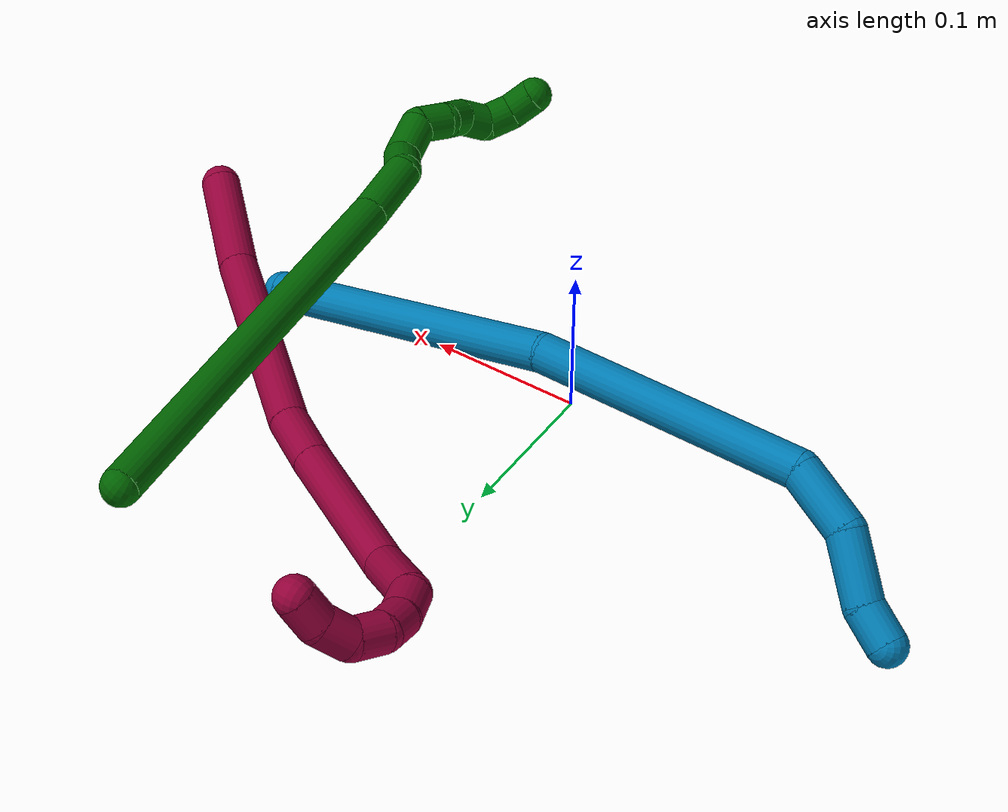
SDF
<sdf version="1.7">
 <world name="default">
  <model name="6">
   <static>0</static>
   <link name="6">
    <collision name="collision-cylinder-e_1_1_4">
     <pose>0.13188 0.01441 -0.062253 -2.91412 1.1196 -2.78099</pose>
     <geometry><cylinder><radius>0.0125</radius><length>0.29309</length></cylinder></geometry>
     <surface>
      <friction><ode><mu>1.16</mu><mu2>1.16</mu2><slip1>0</slip1><slip2>0</slip2></ode></friction>
      <contact><ode><kp>1e+06</kp><kd>1</kd><max_vel>0</max_vel><min_depth>0.001</min_depth></ode></contact>
     </surface>
    </collision>
    <visual name="visual-cylinder-e_1_1_4">
     <pose>0.13188 0.01441 -0.062253 -2.91412 1.1196 -2.78099</pose>
     <geometry><cylinder><radius>0.0125</radius><length>0.29309</length></cylinder></geometry>
     <material><ambient>0 0.392157 0.003922 1</ambient></material>
    </visual>
    <collision name="collision-cylinder-e_2_4_5">
     <pose>0.284378 0.029997 -0.135809 -3.03788 1.06712 -2.96632</pose>
     <geometry><cylinder><radius>0.0125</radius><length>0.047085</length></cylinder></geometry>
     <surface>
      <friction><ode><mu>1.16</mu><mu2>1.16</mu2><slip1>0</slip1><slip2>0</slip2></ode></friction>
      <contact><ode><kp>1e+06</kp><kd>1</kd><max_vel>0</max_vel><min_depth>0.001</min_depth></ode></contact>
     </surface>
    </collision>
    <visual name="visual-cylinder-e_2_4_5">
     <pose>0.284378 0.029997 -0.135809 -3.03788 1.06712 -2.96632</pose>
     <geometry><cylinder><radius>0.0125</radius><length>0.047085</length></cylinder></geometry>
     <material><ambient>0 0.392157 0.003922 1</ambient></material>
    </visual>
    <collision name="collision-cylinder-e_3_5_6">
     <pose>0.31848 0.028283 -0.146319 1.30352 1.35207 1.09841</pose>
     <geometry><cylinder><radius>0.0125</radius><length>0.027624</length></cylinder></geometry>
     <surface>
      <friction><ode><mu>1.16</mu><mu2>1.16</mu2><slip1>0</slip1><slip2>0</slip2></ode></friction>
      <contact><ode><kp>1e+06</kp><kd>1</kd><max_vel>0</max_vel><min_depth>0.001</min_depth></ode></contact>
     </surface>
    </collision>
    <visual name="visual-cylinder-e_3_5_6">
     <pose>0.31848 0.028283 -0.146319 1.30352 1.35207 1.09841</pose>
     <geometry><cylinder><radius>0.0125</radius><length>0.027624</length></cylinder></geometry>
     <material><ambient>0 0.392157 0.003922 1</ambient></material>
    </visual>
    <collision name="collision-cylinder-e_4_6_7">
     <pose>0.344507 0.023759 -0.153915 2.94933 0.972777 2.78083</pose>
     <geometry><cylinder><radius>0.0125</radius><length>0.030356</length></cylinder></geometry>
     <surface>
      <friction><ode><mu>1.16</mu><mu2>1.16</mu2><slip1>0</slip1><slip2>0</slip2></ode></friction>
      <contact><ode><kp>1e+06</kp><kd>1</kd><max_vel>0</max_vel><min_depth>0.001</min_depth></ode></contact>
     </surface>
    </collision>
    <visual name="visual-cylinder-e_4_6_7">
     <pose>0.344507 0.023759 -0.153915 2.94933 0.972777 2.78083</pose>
     <geometry><cylinder><radius>0.0125</radius><length>0.030356</length></cylinder></geometry>
     <material><ambient>0 0.392157 0.003922 1</ambient></material>
    </visual>
    <collision name="collision-cylinder-e_5_7_8">
     <pose>0.364013 0.028847 -0.167062 -2.18696 0.701866 -1.2319</pose>
     <geometry><cylinder><radius>0.0125</radius><length>0.021569</length></cylinder></geometry>
     <surface>
      <friction><ode><mu>1.16</mu><mu2>1.16</mu2><slip1>0</slip1><slip2>0</slip2></ode></friction>
      <contact><ode><kp>1e+06</kp><kd>1</kd><max_vel>0</max_vel><min_depth>0.001</min_depth></ode></contact>
     </surface>
    </collision>
    <visual name="visual-cylinder-e_5_7_8">
     <pose>0.364013 0.028847 -0.167062 -2.18696 0.701866 -1.2319</pose>
     <geometry><cylinder><radius>0.0125</radius><length>0.021569</length></cylinder></geometry>
     <material><ambient>0 0.392157 0.003922 1</ambient></material>
    </visual>
    <collision name="collision-cylinder-e_6_8_9">
     <pose>0.380159 0.039426 -0.17314 -1.90021 1.15296 -1.47592</pose>
     <geometry><cylinder><radius>0.0125</radius><length>0.020094</length></cylinder></geometry>
     <surface>
      <friction><ode><mu>1.16</mu><mu2>1.16</mu2><slip1>0</slip1><slip2>0</slip2></ode></friction>
      <contact><ode><kp>1e+06</kp><kd>1</kd><max_vel>0</max_vel><min_depth>0.001</min_depth></ode></contact>
     </surface>
    </collision>
    <visual name="visual-cylinder-e_6_8_9">
     <pose>0.380159 0.039426 -0.17314 -1.90021 1.15296 -1.47592</pose>
     <geometry><cylinder><radius>0.0125</radius><length>0.020094</length></cylinder></geometry>
     <material><ambient>0 0.392157 0.003922 1</ambient></material>
    </visual>
    <collision name="collision-cylinder-e_7_9_10">
     <pose>0.394541 0.0516 -0.176428 -1.80326 0.546615 -0.681241</pose>
     <geometry><cylinder><radius>0.0125</radius><length>0.020008</length></cylinder></geometry>
     <surface>
      <friction><ode><mu>1.16</mu><mu2>1.16</mu2><slip1>0</slip1><slip2>0</slip2></ode></friction>
      <contact><ode><kp>1e+06</kp><kd>1</kd><max_vel>0</max_vel><min_depth>0.001</min_depth></ode></contact>
     </surface>
    </collision>
    <visual name="visual-cylinder-e_7_9_10">
     <pose>0.394541 0.0516 -0.176428 -1.80326 0.546615 -0.681241</pose>
     <geometry><cylinder><radius>0.0125</radius><length>0.020008</length></cylinder></geometry>
     <material><ambient>0 0.392157 0.003922 1</ambient></material>
    </visual>
    <collision name="collision-cylinder-e_8_10_11">
     <pose>0.404233 0.064908 -0.185917 -2.55566 0.461748 -1.32396</pose>
     <geometry><cylinder><radius>0.0125</radius><length>0.020163</length></cylinder></geometry>
     <surface>
      <friction><ode><mu>1.16</mu><mu2>1.16</mu2><slip1>0</slip1><slip2>0</slip2></ode></friction>
      <contact><ode><kp>1e+06</kp><kd>1</kd><max_vel>0</max_vel><min_depth>0.001</min_depth></ode></contact>
     </surface>
    </collision>
    <visual name="visual-cylinder-e_8_10_11">
     <pose>0.404233 0.064908 -0.185917 -2.55566 0.461748 -1.32396</pose>
     <geometry><cylinder><radius>0.0125</radius><length>0.020163</length></cylinder></geometry>
     <material><ambient>0 0.392157 0.003922 1</ambient></material>
    </visual>
    <collision name="collision-cylinder-e_9_11_2">
     <pose>0.408864 0.072837 -0.203001 -2.84352 0.014008 -0.093224</pose>
     <geometry><cylinder><radius>0.0125</radius><length>0.020012</length></cylinder></geometry>
     <surface>
      <friction><ode><mu>1.16</mu><mu2>1.16</mu2><slip1>0</slip1><slip2>0</slip2></ode></friction>
      <contact><ode><kp>1e+06</kp><kd>1</kd><max_vel>0</max_vel><min_depth>0.001</min_depth></ode></contact>
     </surface>
    </collision>
    <visual name="visual-cylinder-e_9_11_2">
     <pose>0.408864 0.072837 -0.203001 -2.84352 0.014008 -0.093224</pose>
     <geometry><cylinder><radius>0.0125</radius><length>0.020012</length></cylinder></geometry>
     <material><ambient>0 0.392157 0.003922 1</ambient></material>
    </visual>
    <collision name="collision-sphere-2">
     <pose>0.409005 0.075775 -0.212565 0 -0 0</pose>
     <geometry><sphere><radius>0.0125</radius></sphere></geometry>
     <surface>
      <friction><ode><mu>1.16</mu><mu2>1.16</mu2><slip1>0</slip1><slip2>0</slip2></ode></friction>
      <contact><ode><kp>1e+06</kp><kd>1</kd><max_vel>0</max_vel><min_depth>0.001</min_depth></ode></contact>
     </surface>
    </collision>
    <visual name="visual-sphere-2">
     <pose>0.409005 0.075775 -0.212565 0 -0 0</pose>
     <geometry><sphere><radius>0.0125</radius></sphere></geometry>
     <material><ambient>0 0.392157 0.003922 1</ambient></material>
    </visual>
    <collision name="collision-sphere-11">
     <pose>0.408724 0.069899 -0.193437 0 -0 0</pose>
     <geometry><sphere><radius>0.0125</radius></sphere></geometry>
     <surface>
      <friction><ode><mu>1.16</mu><mu2>1.16</mu2><slip1>0</slip1><slip2>0</slip2></ode></friction>
      <contact><ode><kp>1e+06</kp><kd>1</kd><max_vel>0</max_vel><min_depth>0.001</min_depth></ode></contact>
     </surface>
    </collision>
    <visual name="visual-sphere-11">
     <pose>0.408724 0.069899 -0.193437 0 -0 0</pose>
     <geometry><sphere><radius>0.0125</radius></sphere></geometry>
     <material><ambient>0 0.392157 0.003922 1</ambient></material>
    </visual>
    <collision name="collision-sphere-10">
     <pose>0.399741 0.059917 -0.178397 0 -0 0</pose>
     <geometry><sphere><radius>0.0125</radius></sphere></geometry>
     <surface>
      <friction><ode><mu>1.16</mu><mu2>1.16</mu2><slip1>0</slip1><slip2>0</slip2></ode></friction>
      <contact><ode><kp>1e+06</kp><kd>1</kd><max_vel>0</max_vel><min_depth>0.001</min_depth></ode></contact>
     </surface>
    </collision>
    <visual name="visual-sphere-10">
     <pose>0.399741 0.059917 -0.178397 0 -0 0</pose>
     <geometry><sphere><radius>0.0125</radius></sphere></geometry>
     <material><ambient>0 0.392157 0.003922 1</ambient></material>
    </visual>
    <collision name="collision-sphere-9">
     <pose>0.389341 0.043284 -0.174459 0 -0 0</pose>
     <geometry><sphere><radius>0.0125</radius></sphere></geometry>
     <surface>
      <friction><ode><mu>1.16</mu><mu2>1.16</mu2><slip1>0</slip1><slip2>0</slip2></ode></friction>
      <contact><ode><kp>1e+06</kp><kd>1</kd><max_vel>0</max_vel><min_depth>0.001</min_depth></ode></contact>
     </surface>
    </collision>
    <visual name="visual-sphere-9">
     <pose>0.389341 0.043284 -0.174459 0 -0 0</pose>
     <geometry><sphere><radius>0.0125</radius></sphere></geometry>
     <material><ambient>0 0.392157 0.003922 1</ambient></material>
    </visual>
    <collision name="collision-sphere-4">
     <pose>0.263759 0.028821 -0.124507 0 -0 0</pose>
     <geometry><sphere><radius>0.0125</radius></sphere></geometry>
     <surface>
      <friction><ode><mu>1.16</mu><mu2>1.16</mu2><slip1>0</slip1><slip2>0</slip2></ode></friction>
      <contact><ode><kp>1e+06</kp><kd>1</kd><max_vel>0</max_vel><min_depth>0.001</min_depth></ode></contact>
     </surface>
    </collision>
    <visual name="visual-sphere-4">
     <pose>0.263759 0.028821 -0.124507 0 -0 0</pose>
     <geometry><sphere><radius>0.0125</radius></sphere></geometry>
     <material><ambient>0 0.392157 0.003922 1</ambient></material>
    </visual>
    <collision name="collision-sphere-1">
     <geometry><sphere><radius>0.0125</radius></sphere></geometry>
     <surface>
      <friction><ode><mu>1.16</mu><mu2>1.16</mu2><slip1>0</slip1><slip2>0</slip2></ode></friction>
      <contact><ode><kp>1e+06</kp><kd>1</kd><max_vel>0</max_vel><min_depth>0.001</min_depth></ode></contact>
     </surface>
    </collision>
    <visual name="visual-sphere-1">
     <geometry><sphere><radius>0.0125</radius></sphere></geometry>
     <material><ambient>0 0.392157 0.003922 1</ambient></material>
    </visual>
    <collision name="collision-sphere-8">
     <pose>0.370976 0.035568 -0.171822 0 -0 0</pose>
     <geometry><sphere><radius>0.0125</radius></sphere></geometry>
     <surface>
      <friction><ode><mu>1.16</mu><mu2>1.16</mu2><slip1>0</slip1><slip2>0</slip2></ode></friction>
      <contact><ode><kp>1e+06</kp><kd>1</kd><max_vel>0</max_vel><min_depth>0.001</min_depth></ode></contact>
     </surface>
    </collision>
    <visual name="visual-sphere-8">
     <pose>0.370976 0.035568 -0.171822 0 -0 0</pose>
     <geometry><sphere><radius>0.0125</radius></sphere></geometry>
     <material><ambient>0 0.392157 0.003922 1</ambient></material>
    </visual>
    <collision name="collision-sphere-5">
     <pose>0.304997 0.031173 -0.14711 0 -0 0</pose>
     <geometry><sphere><radius>0.0125</radius></sphere></geometry>
     <surface>
      <friction><ode><mu>1.16</mu><mu2>1.16</mu2><slip1>0</slip1><slip2>0</slip2></ode></friction>
      <contact><ode><kp>1e+06</kp><kd>1</kd><max_vel>0</max_vel><min_depth>0.001</min_depth></ode></contact>
     </surface>
    </collision>
    <visual name="visual-sphere-5">
     <pose>0.304997 0.031173 -0.14711 0 -0 0</pose>
     <geometry><sphere><radius>0.0125</radius></sphere></geometry>
     <material><ambient>0 0.392157 0.003922 1</ambient></material>
    </visual>
    <collision name="collision-sphere-6">
     <pose>0.331963 0.025392 -0.145527 0 -0 0</pose>
     <geometry><sphere><radius>0.0125</radius></sphere></geometry>
     <surface>
      <friction><ode><mu>1.16</mu><mu2>1.16</mu2><slip1>0</slip1><slip2>0</slip2></ode></friction>
      <contact><ode><kp>1e+06</kp><kd>1</kd><max_vel>0</max_vel><min_depth>0.001</min_depth></ode></contact>
     </surface>
    </collision>
    <visual name="visual-sphere-6">
     <pose>0.331963 0.025392 -0.145527 0 -0 0</pose>
     <geometry><sphere><radius>0.0125</radius></sphere></geometry>
     <material><ambient>0 0.392157 0.003922 1</ambient></material>
    </visual>
    <collision name="collision-sphere-7">
     <pose>0.35705 0.022126 -0.162303 0 -0 0</pose>
     <geometry><sphere><radius>0.0125</radius></sphere></geometry>
     <surface>
      <friction><ode><mu>1.16</mu><mu2>1.16</mu2><slip1>0</slip1><slip2>0</slip2></ode></friction>
      <contact><ode><kp>1e+06</kp><kd>1</kd><max_vel>0</max_vel><min_depth>0.001</min_depth></ode></contact>
     </surface>
    </collision>
    <visual name="visual-sphere-7">
     <pose>0.35705 0.022126 -0.162303 0 -0 0</pose>
     <geometry><sphere><radius>0.0125</radius></sphere></geometry>
     <material><ambient>0 0.392157 0.003922 1</ambient></material>
    </visual>
    <inertial>
     <pose>0.22203 0.024703 -0.103556 0 -0 0</pose>
     <mass>0.5</mass>
     <inertia>
      <ixx>-0.00116</ixx>
      <ixy>0</ixy>
      <ixz>0</ixz>
      <iyy>0.001769</iyy>
      <iyz>0</iyz>
      <izz>-0.002145</izz>
     </inertia>
    </inertial>
   </link>
   <pose>0.148778 0.249504 0.0487 -2.58142 0.350089 -1.13563</pose>
  </model>
  <model name="8">
   <static>0</static>
   <link name="8">
    <collision name="collision-cylinder-e_1_1_4">
     <pose>-0.02471 0.008873 0.02515 -0.339152 -0.747278 0.134055</pose>
     <geometry><cylinder><radius>0.0125</radius><length>0.072714</length></cylinder></geometry>
     <surface>
      <friction><ode><mu>1.16</mu><mu2>1.16</mu2><slip1>0</slip1><slip2>0</slip2></ode></friction>
      <contact><ode><kp>1e+06</kp><kd>1</kd><max_vel>0</max_vel><min_depth>0.001</min_depth></ode></contact>
     </surface>
    </collision>
    <visual name="visual-cylinder-e_1_1_4">
     <pose>-0.02471 0.008873 0.02515 -0.339152 -0.747278 0.134055</pose>
     <geometry><cylinder><radius>0.0125</radius><length>0.072714</length></cylinder></geometry>
     <material><ambient>0.584314 0 0.227451 1</ambient></material>
    </visual>
    <collision name="collision-cylinder-e_2_4_5">
     <pose>-0.090294 0.034895 0.09982 -0.333393 -0.662411 0.11559</pose>
     <geometry><cylinder><radius>0.0125</radius><length>0.132921</length></cylinder></geometry>
     <surface>
      <friction><ode><mu>1.16</mu><mu2>1.16</mu2><slip1>0</slip1><slip2>0</slip2></ode></friction>
      <contact><ode><kp>1e+06</kp><kd>1</kd><max_vel>0</max_vel><min_depth>0.001</min_depth></ode></contact>
     </surface>
    </collision>
    <visual name="visual-cylinder-e_2_4_5">
     <pose>-0.090294 0.034895 0.09982 -0.333393 -0.662411 0.11559</pose>
     <geometry><cylinder><radius>0.0125</radius><length>0.132921</length></cylinder></geometry>
     <material><ambient>0.584314 0 0.227451 1</ambient></material>
    </visual>
    <collision name="collision-cylinder-e_3_5_6">
     <pose>-0.139702 0.057818 0.164917 -0.354914 -0.474503 0.086678</pose>
     <geometry><cylinder><radius>0.0125</radius><length>0.037353</length></cylinder></geometry>
     <surface>
      <friction><ode><mu>1.16</mu><mu2>1.16</mu2><slip1>0</slip1><slip2>0</slip2></ode></friction>
      <contact><ode><kp>1e+06</kp><kd>1</kd><max_vel>0</max_vel><min_depth>0.001</min_depth></ode></contact>
     </surface>
    </collision>
    <visual name="visual-cylinder-e_3_5_6">
     <pose>-0.139702 0.057818 0.164917 -0.354914 -0.474503 0.086678</pose>
     <geometry><cylinder><radius>0.0125</radius><length>0.037353</length></cylinder></geometry>
     <material><ambient>0.584314 0 0.227451 1</ambient></material>
    </visual>
    <collision name="collision-cylinder-e_4_6_7">
     <pose>-0.168357 0.079778 0.22227 -0.369672 -0.422125 0.080075</pose>
     <geometry><cylinder><radius>0.0125</radius><length>0.098227</length></cylinder></geometry>
     <surface>
      <friction><ode><mu>1.16</mu><mu2>1.16</mu2><slip1>0</slip1><slip2>0</slip2></ode></friction>
      <contact><ode><kp>1e+06</kp><kd>1</kd><max_vel>0</max_vel><min_depth>0.001</min_depth></ode></contact>
     </surface>
    </collision>
    <visual name="visual-cylinder-e_4_6_7">
     <pose>-0.168357 0.079778 0.22227 -0.369672 -0.422125 0.080075</pose>
     <geometry><cylinder><radius>0.0125</radius><length>0.098227</length></cylinder></geometry>
     <material><ambient>0.584314 0 0.227451 1</ambient></material>
    </visual>
    <collision name="collision-cylinder-e_5_7_8">
     <pose>-0.194512 0.113222 0.281059 -0.792502 -0.243992 0.102501</pose>
     <geometry><cylinder><radius>0.0125</radius><length>0.049946</length></cylinder></geometry>
     <surface>
      <friction><ode><mu>1.16</mu><mu2>1.16</mu2><slip1>0</slip1><slip2>0</slip2></ode></friction>
      <contact><ode><kp>1e+06</kp><kd>1</kd><max_vel>0</max_vel><min_depth>0.001</min_depth></ode></contact>
     </surface>
    </collision>
    <visual name="visual-cylinder-e_5_7_8">
     <pose>-0.194512 0.113222 0.281059 -0.792502 -0.243992 0.102501</pose>
     <geometry><cylinder><radius>0.0125</radius><length>0.049946</length></cylinder></geometry>
     <material><ambient>0.584314 0 0.227451 1</ambient></material>
    </visual>
    <collision name="collision-cylinder-e_6_8_9">
     <pose>-0.208592 0.139154 0.301657 -1.17894 -0.708756 0.485156</pose>
     <geometry><cylinder><radius>0.0125</radius><length>0.024729</length></cylinder></geometry>
     <surface>
      <friction><ode><mu>1.16</mu><mu2>1.16</mu2><slip1>0</slip1><slip2>0</slip2></ode></friction>
      <contact><ode><kp>1e+06</kp><kd>1</kd><max_vel>0</max_vel><min_depth>0.001</min_depth></ode></contact>
     </surface>
    </collision>
    <visual name="visual-cylinder-e_6_8_9">
     <pose>-0.208592 0.139154 0.301657 -1.17894 -0.708756 0.485156</pose>
     <geometry><cylinder><radius>0.0125</radius><length>0.024729</length></cylinder></geometry>
     <material><ambient>0.584314 0 0.227451 1</ambient></material>
    </visual>
    <collision name="collision-cylinder-e_7_9_10">
     <pose>-0.223158 0.15552 0.305535 -1.5327 -0.70267 0.678403</pose>
     <geometry><cylinder><radius>0.0125</radius><length>0.02017</length></cylinder></geometry>
     <surface>
      <friction><ode><mu>1.16</mu><mu2>1.16</mu2><slip1>0</slip1><slip2>0</slip2></ode></friction>
      <contact><ode><kp>1e+06</kp><kd>1</kd><max_vel>0</max_vel><min_depth>0.001</min_depth></ode></contact>
     </surface>
    </collision>
    <visual name="visual-cylinder-e_7_9_10">
     <pose>-0.223158 0.15552 0.305535 -1.5327 -0.70267 0.678403</pose>
     <geometry><cylinder><radius>0.0125</radius><length>0.02017</length></cylinder></geometry>
     <material><ambient>0.584314 0 0.227451 1</ambient></material>
    </visual>
    <collision name="collision-cylinder-e_8_10_11">
     <pose>-0.236347 0.170652 0.301289 -2.11861 -0.653252 1.08599</pose>
     <geometry><cylinder><radius>0.0125</radius><length>0.021953</length></cylinder></geometry>
     <surface>
      <friction><ode><mu>1.16</mu><mu2>1.16</mu2><slip1>0</slip1><slip2>0</slip2></ode></friction>
      <contact><ode><kp>1e+06</kp><kd>1</kd><max_vel>0</max_vel><min_depth>0.001</min_depth></ode></contact>
     </surface>
    </collision>
    <visual name="visual-cylinder-e_8_10_11">
     <pose>-0.236347 0.170652 0.301289 -2.11861 -0.653252 1.08599</pose>
     <geometry><cylinder><radius>0.0125</radius><length>0.021953</length></cylinder></geometry>
     <material><ambient>0.584314 0 0.227451 1</ambient></material>
    </visual>
    <collision name="collision-cylinder-e_9_11_12">
     <pose>-0.243845 0.1859 0.289367 -2.32822 -0.076842 0.178029</pose>
     <geometry><cylinder><radius>0.0125</radius><length>0.021552</length></cylinder></geometry>
     <surface>
      <friction><ode><mu>1.16</mu><mu2>1.16</mu2><slip1>0</slip1><slip2>0</slip2></ode></friction>
      <contact><ode><kp>1e+06</kp><kd>1</kd><max_vel>0</max_vel><min_depth>0.001</min_depth></ode></contact>
     </surface>
    </collision>
    <visual name="visual-cylinder-e_9_11_12">
     <pose>-0.243845 0.1859 0.289367 -2.32822 -0.076842 0.178029</pose>
     <geometry><cylinder><radius>0.0125</radius><length>0.021552</length></cylinder></geometry>
     <material><ambient>0.584314 0 0.227451 1</ambient></material>
    </visual>
    <collision name="collision-cylinder-e_10_12_2">
     <pose>-0.24183 0.20105 0.275474 -2.29617 0.28196 -0.611237</pose>
     <geometry><cylinder><radius>0.0125</radius><length>0.020435</length></cylinder></geometry>
     <surface>
      <friction><ode><mu>1.16</mu><mu2>1.16</mu2><slip1>0</slip1><slip2>0</slip2></ode></friction>
      <contact><ode><kp>1e+06</kp><kd>1</kd><max_vel>0</max_vel><min_depth>0.001</min_depth></ode></contact>
     </surface>
    </collision>
    <visual name="visual-cylinder-e_10_12_2">
     <pose>-0.24183 0.20105 0.275474 -2.29617 0.28196 -0.611237</pose>
     <geometry><cylinder><radius>0.0125</radius><length>0.020435</length></cylinder></geometry>
     <material><ambient>0.584314 0 0.227451 1</ambient></material>
    </visual>
    <collision name="collision-sphere-2">
     <pose>-0.238987 0.208393 0.268964 0 -0 0</pose>
     <geometry><sphere><radius>0.0125</radius></sphere></geometry>
     <surface>
      <friction><ode><mu>1.16</mu><mu2>1.16</mu2><slip1>0</slip1><slip2>0</slip2></ode></friction>
      <contact><ode><kp>1e+06</kp><kd>1</kd><max_vel>0</max_vel><min_depth>0.001</min_depth></ode></contact>
     </surface>
    </collision>
    <visual name="visual-sphere-2">
     <pose>-0.238987 0.208393 0.268964 0 -0 0</pose>
     <geometry><sphere><radius>0.0125</radius></sphere></geometry>
     <material><ambient>0.584314 0 0.227451 1</ambient></material>
    </visual>
    <collision name="collision-sphere-12">
     <pose>-0.244673 0.193707 0.281985 0 -0 0</pose>
     <geometry><sphere><radius>0.0125</radius></sphere></geometry>
     <surface>
      <friction><ode><mu>1.16</mu><mu2>1.16</mu2><slip1>0</slip1><slip2>0</slip2></ode></friction>
      <contact><ode><kp>1e+06</kp><kd>1</kd><max_vel>0</max_vel><min_depth>0.001</min_depth></ode></contact>
     </surface>
    </collision>
    <visual name="visual-sphere-12">
     <pose>-0.244673 0.193707 0.281985 0 -0 0</pose>
     <geometry><sphere><radius>0.0125</radius></sphere></geometry>
     <material><ambient>0.584314 0 0.227451 1</ambient></material>
    </visual>
    <collision name="collision-sphere-11">
     <pose>-0.243018 0.178093 0.296749 0 -0 0</pose>
     <geometry><sphere><radius>0.0125</radius></sphere></geometry>
     <surface>
      <friction><ode><mu>1.16</mu><mu2>1.16</mu2><slip1>0</slip1><slip2>0</slip2></ode></friction>
      <contact><ode><kp>1e+06</kp><kd>1</kd><max_vel>0</max_vel><min_depth>0.001</min_depth></ode></contact>
     </surface>
    </collision>
    <visual name="visual-sphere-11">
     <pose>-0.243018 0.178093 0.296749 0 -0 0</pose>
     <geometry><sphere><radius>0.0125</radius></sphere></geometry>
     <material><ambient>0.584314 0 0.227451 1</ambient></material>
    </visual>
    <collision name="collision-sphere-10">
     <pose>-0.229676 0.163211 0.305828 0 -0 0</pose>
     <geometry><sphere><radius>0.0125</radius></sphere></geometry>
     <surface>
      <friction><ode><mu>1.16</mu><mu2>1.16</mu2><slip1>0</slip1><slip2>0</slip2></ode></friction>
      <contact><ode><kp>1e+06</kp><kd>1</kd><max_vel>0</max_vel><min_depth>0.001</min_depth></ode></contact>
     </surface>
    </collision>
    <visual name="visual-sphere-10">
     <pose>-0.229676 0.163211 0.305828 0 -0 0</pose>
     <geometry><sphere><radius>0.0125</radius></sphere></geometry>
     <material><ambient>0.584314 0 0.227451 1</ambient></material>
    </visual>
    <collision name="collision-sphere-9">
     <pose>-0.21664 0.14783 0.305242 0 -0 0</pose>
     <geometry><sphere><radius>0.0125</radius></sphere></geometry>
     <surface>
      <friction><ode><mu>1.16</mu><mu2>1.16</mu2><slip1>0</slip1><slip2>0</slip2></ode></friction>
      <contact><ode><kp>1e+06</kp><kd>1</kd><max_vel>0</max_vel><min_depth>0.001</min_depth></ode></contact>
     </surface>
    </collision>
    <visual name="visual-sphere-9">
     <pose>-0.21664 0.14783 0.305242 0 -0 0</pose>
     <geometry><sphere><radius>0.0125</radius></sphere></geometry>
     <material><ambient>0.584314 0 0.227451 1</ambient></material>
    </visual>
    <collision name="collision-sphere-4">
     <pose>-0.04942 0.017745 0.050301 0 -0 0</pose>
     <geometry><sphere><radius>0.0125</radius></sphere></geometry>
     <surface>
      <friction><ode><mu>1.16</mu><mu2>1.16</mu2><slip1>0</slip1><slip2>0</slip2></ode></friction>
      <contact><ode><kp>1e+06</kp><kd>1</kd><max_vel>0</max_vel><min_depth>0.001</min_depth></ode></contact>
     </surface>
    </collision>
    <visual name="visual-sphere-4">
     <pose>-0.04942 0.017745 0.050301 0 -0 0</pose>
     <geometry><sphere><radius>0.0125</radius></sphere></geometry>
     <material><ambient>0.584314 0 0.227451 1</ambient></material>
    </visual>
    <collision name="collision-sphere-1">
     <geometry><sphere><radius>0.0125</radius></sphere></geometry>
     <surface>
      <friction><ode><mu>1.16</mu><mu2>1.16</mu2><slip1>0</slip1><slip2>0</slip2></ode></friction>
      <contact><ode><kp>1e+06</kp><kd>1</kd><max_vel>0</max_vel><min_depth>0.001</min_depth></ode></contact>
     </surface>
    </collision>
    <visual name="visual-sphere-1">
     <geometry><sphere><radius>0.0125</radius></sphere></geometry>
     <material><ambient>0.584314 0 0.227451 1</ambient></material>
    </visual>
    <collision name="collision-sphere-8">
     <pose>-0.200545 0.130479 0.298073 0 -0 0</pose>
     <geometry><sphere><radius>0.0125</radius></sphere></geometry>
     <surface>
      <friction><ode><mu>1.16</mu><mu2>1.16</mu2><slip1>0</slip1><slip2>0</slip2></ode></friction>
      <contact><ode><kp>1e+06</kp><kd>1</kd><max_vel>0</max_vel><min_depth>0.001</min_depth></ode></contact>
     </surface>
    </collision>
    <visual name="visual-sphere-8">
     <pose>-0.200545 0.130479 0.298073 0 -0 0</pose>
     <geometry><sphere><radius>0.0125</radius></sphere></geometry>
     <material><ambient>0.584314 0 0.227451 1</ambient></material>
    </visual>
    <collision name="collision-sphere-5">
     <pose>-0.131169 0.052044 0.149339 0 -0 0</pose>
     <geometry><sphere><radius>0.0125</radius></sphere></geometry>
     <surface>
      <friction><ode><mu>1.16</mu><mu2>1.16</mu2><slip1>0</slip1><slip2>0</slip2></ode></friction>
      <contact><ode><kp>1e+06</kp><kd>1</kd><max_vel>0</max_vel><min_depth>0.001</min_depth></ode></contact>
     </surface>
    </collision>
    <visual name="visual-sphere-5">
     <pose>-0.131169 0.052044 0.149339 0 -0 0</pose>
     <geometry><sphere><radius>0.0125</radius></sphere></geometry>
     <material><ambient>0.584314 0 0.227451 1</ambient></material>
    </visual>
    <collision name="collision-sphere-6">
     <pose>-0.148235 0.063591 0.180495 0 -0 0</pose>
     <geometry><sphere><radius>0.0125</radius></sphere></geometry>
     <surface>
      <friction><ode><mu>1.16</mu><mu2>1.16</mu2><slip1>0</slip1><slip2>0</slip2></ode></friction>
      <contact><ode><kp>1e+06</kp><kd>1</kd><max_vel>0</max_vel><min_depth>0.001</min_depth></ode></contact>
     </surface>
    </collision>
    <visual name="visual-sphere-6">
     <pose>-0.148235 0.063591 0.180495 0 -0 0</pose>
     <geometry><sphere><radius>0.0125</radius></sphere></geometry>
     <material><ambient>0.584314 0 0.227451 1</ambient></material>
    </visual>
    <collision name="collision-sphere-7">
     <pose>-0.188479 0.095966 0.264046 0 -0 0</pose>
     <geometry><sphere><radius>0.0125</radius></sphere></geometry>
     <surface>
      <friction><ode><mu>1.16</mu><mu2>1.16</mu2><slip1>0</slip1><slip2>0</slip2></ode></friction>
      <contact><ode><kp>1e+06</kp><kd>1</kd><max_vel>0</max_vel><min_depth>0.001</min_depth></ode></contact>
     </surface>
    </collision>
    <visual name="visual-sphere-7">
     <pose>-0.188479 0.095966 0.264046 0 -0 0</pose>
     <geometry><sphere><radius>0.0125</radius></sphere></geometry>
     <material><ambient>0.584314 0 0.227451 1</ambient></material>
    </visual>
    <inertial>
     <pose>-0.140629 0.078747 0.17846 0 -0 0</pose>
     <mass>0.5</mass>
     <inertia>
      <ixx>0.000294</ixx>
      <ixy>0</ixy>
      <ixz>0</ixz>
      <iyy>0.000368</iyy>
      <iyz>0</iyz>
      <izz>0.000107</izz>
     </inertia>
    </inertial>
   </link>
   <pose>0.2816 -0.008433 0.046092 1.65826 -0.530608 -1.55982</pose>
  </model>
  <model name="9">
   <static>0</static>
   <link name="9">
    <collision name="collision-cylinder-e_1_1_4">
     <pose>-0.103313 -0.006468 -0.015478 2.74574 -1.40983 -2.67856</pose>
     <geometry><cylinder><radius>0.0125</radius><length>0.209333</length></cylinder></geometry>
     <surface>
      <friction><ode><mu>1.16</mu><mu2>1.16</mu2><slip1>0</slip1><slip2>0</slip2></ode></friction>
      <contact><ode><kp>1e+06</kp><kd>1</kd><max_vel>0</max_vel><min_depth>0.001</min_depth></ode></contact>
     </surface>
    </collision>
    <visual name="visual-cylinder-e_1_1_4">
     <pose>-0.103313 -0.006468 -0.015478 2.74574 -1.40983 -2.67856</pose>
     <geometry><cylinder><radius>0.0125</radius><length>0.209333</length></cylinder></geometry>
     <material><ambient>0 0.490196 0.709804 1</ambient></material>
    </visual>
    <collision name="collision-cylinder-e_2_4_5">
     <pose>-0.291662 -0.001178 -0.054381 -2.67636 -1.2718 2.52051</pose>
     <geometry><cylinder><radius>0.0125</radius><length>0.177967</length></cylinder></geometry>
     <surface>
      <friction><ode><mu>1.16</mu><mu2>1.16</mu2><slip1>0</slip1><slip2>0</slip2></ode></friction>
      <contact><ode><kp>1e+06</kp><kd>1</kd><max_vel>0</max_vel><min_depth>0.001</min_depth></ode></contact>
     </surface>
    </collision>
    <visual name="visual-cylinder-e_2_4_5">
     <pose>-0.291662 -0.001178 -0.054381 -2.67636 -1.2718 2.52051</pose>
     <geometry><cylinder><radius>0.0125</radius><length>0.177967</length></cylinder></geometry>
     <material><ambient>0 0.490196 0.709804 1</ambient></material>
    </visual>
    <collision name="collision-cylinder-e_3_5_6">
     <pose>-0.394537 0.023106 -0.080688 -1.79697 -0.946502 1.14327</pose>
     <geometry><cylinder><radius>0.0125</radius><length>0.043974</length></cylinder></geometry>
     <surface>
      <friction><ode><mu>1.16</mu><mu2>1.16</mu2><slip1>0</slip1><slip2>0</slip2></ode></friction>
      <contact><ode><kp>1e+06</kp><kd>1</kd><max_vel>0</max_vel><min_depth>0.001</min_depth></ode></contact>
     </surface>
    </collision>
    <visual name="visual-cylinder-e_3_5_6">
     <pose>-0.394537 0.023106 -0.080688 -1.79697 -0.946502 1.14327</pose>
     <geometry><cylinder><radius>0.0125</radius><length>0.043974</length></cylinder></geometry>
     <material><ambient>0 0.490196 0.709804 1</ambient></material>
    </visual>
    <collision name="collision-cylinder-e_4_6_7">
     <pose>-0.42342 0.054431 -0.084294 -1.60927 -0.530738 0.55054</pose>
     <geometry><cylinder><radius>0.0125</radius><length>0.043632</length></cylinder></geometry>
     <surface>
      <friction><ode><mu>1.16</mu><mu2>1.16</mu2><slip1>0</slip1><slip2>0</slip2></ode></friction>
      <contact><ode><kp>1e+06</kp><kd>1</kd><max_vel>0</max_vel><min_depth>0.001</min_depth></ode></contact>
     </surface>
    </collision>
    <visual name="visual-cylinder-e_4_6_7">
     <pose>-0.42342 0.054431 -0.084294 -1.60927 -0.530738 0.55054</pose>
     <geometry><cylinder><radius>0.0125</radius><length>0.043632</length></cylinder></geometry>
     <material><ambient>0 0.490196 0.709804 1</ambient></material>
    </visual>
    <collision name="collision-cylinder-e_5_7_2">
     <pose>-0.443333 0.081811 -0.087289 -1.82967 -0.785182 0.987189</pose>
     <geometry><cylinder><radius>0.0125</radius><length>0.025094</length></cylinder></geometry>
     <surface>
      <friction><ode><mu>1.16</mu><mu2>1.16</mu2><slip1>0</slip1><slip2>0</slip2></ode></friction>
      <contact><ode><kp>1e+06</kp><kd>1</kd><max_vel>0</max_vel><min_depth>0.001</min_depth></ode></contact>
     </surface>
    </collision>
    <visual name="visual-cylinder-e_5_7_2">
     <pose>-0.443333 0.081811 -0.087289 -1.82967 -0.785182 0.987189</pose>
     <geometry><cylinder><radius>0.0125</radius><length>0.025094</length></cylinder></geometry>
     <material><ambient>0 0.490196 0.709804 1</ambient></material>
    </visual>
    <collision name="collision-sphere-2">
     <pose>-0.452203 0.090389 -0.089561 0 -0 0</pose>
     <geometry><sphere><radius>0.0125</radius></sphere></geometry>
     <surface>
      <friction><ode><mu>1.16</mu><mu2>1.16</mu2><slip1>0</slip1><slip2>0</slip2></ode></friction>
      <contact><ode><kp>1e+06</kp><kd>1</kd><max_vel>0</max_vel><min_depth>0.001</min_depth></ode></contact>
     </surface>
    </collision>
    <visual name="visual-sphere-2">
     <pose>-0.452203 0.090389 -0.089561 0 -0 0</pose>
     <geometry><sphere><radius>0.0125</radius></sphere></geometry>
     <material><ambient>0 0.490196 0.709804 1</ambient></material>
    </visual>
    <collision name="collision-sphere-7">
     <pose>-0.434462 0.073232 -0.085018 0 -0 0</pose>
     <geometry><sphere><radius>0.0125</radius></sphere></geometry>
     <surface>
      <friction><ode><mu>1.16</mu><mu2>1.16</mu2><slip1>0</slip1><slip2>0</slip2></ode></friction>
      <contact><ode><kp>1e+06</kp><kd>1</kd><max_vel>0</max_vel><min_depth>0.001</min_depth></ode></contact>
     </surface>
    </collision>
    <visual name="visual-sphere-7">
     <pose>-0.434462 0.073232 -0.085018 0 -0 0</pose>
     <geometry><sphere><radius>0.0125</radius></sphere></geometry>
     <material><ambient>0 0.490196 0.709804 1</ambient></material>
    </visual>
    <collision name="collision-sphere-6">
     <pose>-0.412377 0.035631 -0.08357 0 -0 0</pose>
     <geometry><sphere><radius>0.0125</radius></sphere></geometry>
     <surface>
      <friction><ode><mu>1.16</mu><mu2>1.16</mu2><slip1>0</slip1><slip2>0</slip2></ode></friction>
      <contact><ode><kp>1e+06</kp><kd>1</kd><max_vel>0</max_vel><min_depth>0.001</min_depth></ode></contact>
     </surface>
    </collision>
    <visual name="visual-sphere-6">
     <pose>-0.412377 0.035631 -0.08357 0 -0 0</pose>
     <geometry><sphere><radius>0.0125</radius></sphere></geometry>
     <material><ambient>0 0.490196 0.709804 1</ambient></material>
    </visual>
    <collision name="collision-sphere-5">
     <pose>-0.376698 0.010581 -0.077806 0 -0 0</pose>
     <geometry><sphere><radius>0.0125</radius></sphere></geometry>
     <surface>
      <friction><ode><mu>1.16</mu><mu2>1.16</mu2><slip1>0</slip1><slip2>0</slip2></ode></friction>
      <contact><ode><kp>1e+06</kp><kd>1</kd><max_vel>0</max_vel><min_depth>0.001</min_depth></ode></contact>
     </surface>
    </collision>
    <visual name="visual-sphere-5">
     <pose>-0.376698 0.010581 -0.077806 0 -0 0</pose>
     <geometry><sphere><radius>0.0125</radius></sphere></geometry>
     <material><ambient>0 0.490196 0.709804 1</ambient></material>
    </visual>
    <collision name="collision-sphere-1">
     <geometry><sphere><radius>0.0125</radius></sphere></geometry>
     <surface>
      <friction><ode><mu>1.16</mu><mu2>1.16</mu2><slip1>0</slip1><slip2>0</slip2></ode></friction>
      <contact><ode><kp>1e+06</kp><kd>1</kd><max_vel>0</max_vel><min_depth>0.001</min_depth></ode></contact>
     </surface>
    </collision>
    <visual name="visual-sphere-1">
     <geometry><sphere><radius>0.0125</radius></sphere></geometry>
     <material><ambient>0 0.490196 0.709804 1</ambient></material>
    </visual>
    <collision name="collision-sphere-4">
     <pose>-0.206627 -0.012937 -0.030956 0 -0 0</pose>
     <geometry><sphere><radius>0.0125</radius></sphere></geometry>
     <surface>
      <friction><ode><mu>1.16</mu><mu2>1.16</mu2><slip1>0</slip1><slip2>0</slip2></ode></friction>
      <contact><ode><kp>1e+06</kp><kd>1</kd><max_vel>0</max_vel><min_depth>0.001</min_depth></ode></contact>
     </surface>
    </collision>
    <visual name="visual-sphere-4">
     <pose>-0.206627 -0.012937 -0.030956 0 -0 0</pose>
     <geometry><sphere><radius>0.0125</radius></sphere></geometry>
     <material><ambient>0 0.490196 0.709804 1</ambient></material>
    </visual>
    <inertial>
     <pose>-0.240965 0.007761 -0.044669 0 -0 0</pose>
     <mass>0.5</mass>
     <inertia>
      <ixx>-0.000215</ixx>
      <ixy>0</ixy>
      <ixz>0</ixz>
      <iyy>0.001286</iyy>
      <iyz>0</iyz>
      <izz>0.001195</izz>
     </inertia>
    </inertial>
   </link>
   <pose>0.207111 0.023678 0.011526 -1.04209 0.265969 -0.189164</pose>
  </model>
 </world>
</sdf>
